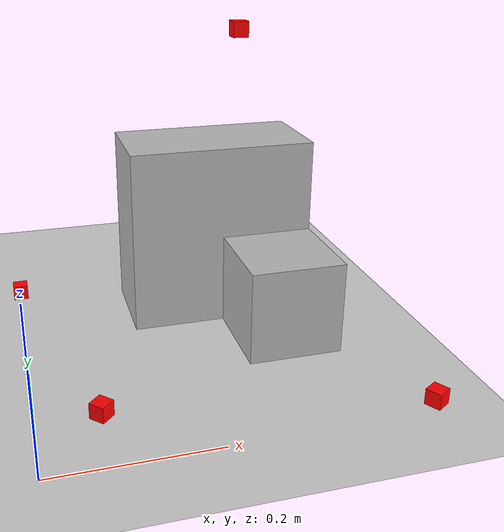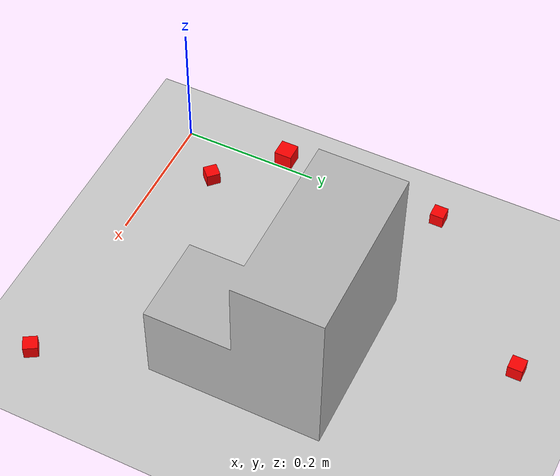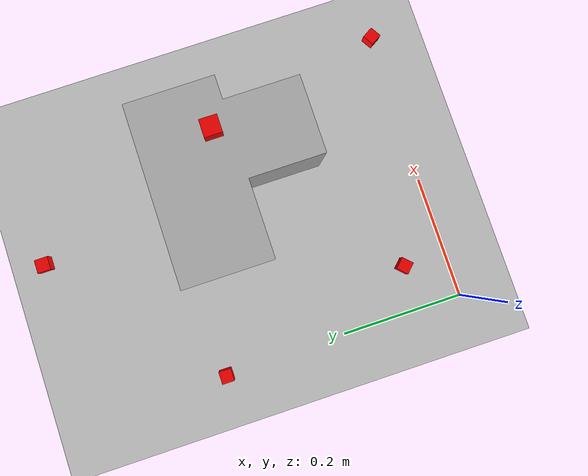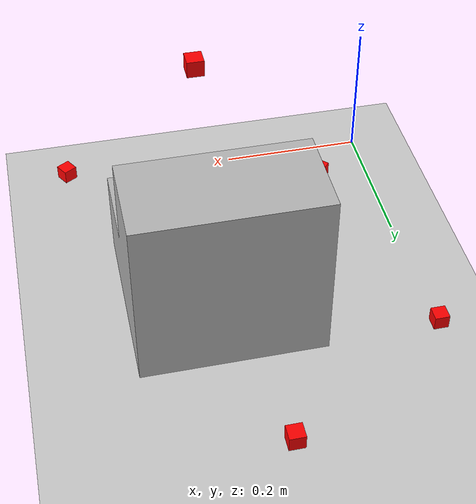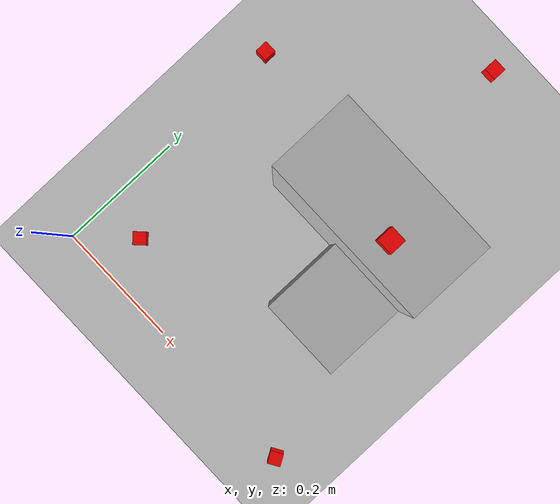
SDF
<?xml version="1.0"?>
<sdf version="1.9">
  <world name="stylet_world">

    <physics name="default_physics" default="true" type="ode">
      <max_step_size>0.001</max_step_size>
      <real_time_factor>1.0</real_time_factor>
    </physics>

    <plugin filename="gz-sim-physics-system" name="gz::sim::systems::Physics"></plugin>
    <plugin filename="gz-sim-scene-broadcaster-system" name="gz::sim::systems::SceneBroadcaster"></plugin>
    <plugin filename="gz-sim-user-commands-system" name="gz::sim::systems::UserCommands"></plugin>
    <plugin filename="gz-sim-sensors-system" name="gz::sim::systems::Sensors">
      <render_engine>ogre2</render_engine>
    </plugin>
    <plugin filename="gz-sim-forcetorque-system" name="gz::sim::systems::ForceTorque"></plugin>

    <light type="directional" name="sun">
      <cast_shadows>true</cast_shadows>
      <pose>0 0 10 0 0 0</pose>
      <diffuse>0.8 0.8 0.8 1</diffuse>
      <specular>0.2 0.2 0.2 1</specular>
      <direction>-0.5 0.1 -0.9</direction>
    </light>

    <model name="ground_plane">
      <static>true</static>
      <link name="link">
        <collision name="collision">
          <geometry><plane><normal>0 0 1</normal></plane></geometry>
        </collision>
        <visual name="visual">
          <geometry><plane><normal>0 0 1</normal><size>10 10</size></plane></geometry>
        </visual>
      </link>
    </model>

    <include>
      <uri>model://target</uri>
      <name>target</name>
      <pose>0.15 0.15 0 0 0 0</pose>
    </include>

    <model name="lidar_rig">
      <static>true</static>

      <link name="lidar_front">
        <pose>0 0.40 0.02 0 0 0</pose>
        <collision name="lidar_front_collision">
          <geometry><box><size>0.02 0.02 0.02</size></box></geometry>
        </collision>
        <visual name="lidar_front_visual">
          <geometry><box><size>0.02 0.02 0.02</size></box></geometry>
          <material><ambient>1 0 0 1</ambient><diffuse>1 0 0 1</diffuse><specular>1 0 0 1</specular></material>
        </visual>
        <sensor name="lidar_front_sensor" type="gpu_lidar">
          <topic>/lidar_1</topic>
          <update_rate>10</update_rate>
          <alwaysOn>1</alwaysOn>
          <visualize>true</visualize>
          <lidar>
            <scan>
              <horizontal>
                <samples>640</samples>
                <resolution>1</resolution>
                <min_angle>-0.5</min_angle>
                <max_angle>0.5</max_angle>
              </horizontal>
              <vertical>
                <samples>16</samples>
                <resolution>1</resolution>
                <min_angle>-0.261799</min_angle>
                <max_angle>0.261799</max_angle>
              </vertical>
            </scan>
            <range>
              <min>0.05</min>
              <max>2.0</max>
              <resolution>0.01</resolution>
            </range>
          </lidar>
        </sensor>
      </link>

      <link name="lidar_left">
        <pose>0.075 0.075 0.02 0 0 0.785</pose>
        <collision name="lidar_left_collision">
          <geometry><box><size>0.02 0.02 0.02</size></box></geometry>
        </collision>
        <visual name="lidar_left_visual">
          <geometry><box><size>0.02 0.02 0.02</size></box></geometry>
          <material><ambient>1 0 0 1</ambient><diffuse>1 0 0 1</diffuse><specular>1 0 0 1</specular></material>
        </visual>
        <sensor name="lidar_left_sensor" type="gpu_lidar">
          <topic>/lidar_2</topic>
          <update_rate>10</update_rate>
          <alwaysOn>1</alwaysOn>
          <visualize>true</visualize>
          <lidar>
            <scan>
              <horizontal>
                <samples>640</samples>
                <resolution>1</resolution>
                <min_angle>-0.5</min_angle>
                <max_angle>0.5</max_angle>
              </horizontal>
              <vertical>
                <samples>16</samples>
                <resolution>1</resolution>
                <min_angle>-0.261799</min_angle>
                <max_angle>0.261799</max_angle>
              </vertical>
            </scan>
            <range>
              <min>0.05</min>
              <max>2.0</max>
              <resolution>0.01</resolution>
            </range>
          </lidar>
        </sensor>
      </link>

      <link name="lidar_top">
        <pose>0.30 0.30 0.40 0 1.571 0</pose>
        <collision name="lidar_top_collision">
          <geometry><box><size>0.02 0.02 0.02</size></box></geometry>
        </collision>
        <visual name="lidar_top_visual">
          <geometry><box><size>0.02 0.02 0.02</size></box></geometry>
          <material><ambient>1 0 0 1</ambient><diffuse>1 0 0 1</diffuse><specular>1 0 0 1</specular></material>
        </visual>
        <sensor name="lidar_top_sensor" type="gpu_lidar">
          <topic>/lidar_3</topic>
          <update_rate>10</update_rate>
          <alwaysOn>1</alwaysOn>
          <visualize>true</visualize>
          <lidar>
            <scan>
              <horizontal>
                <samples>640</samples>
                <resolution>1</resolution>
                <min_angle>-0.5</min_angle>
                <max_angle>0.5</max_angle>
              </horizontal>
              <vertical>
                <samples>16</samples>
                <resolution>1</resolution>
                <min_angle>-0.261799</min_angle>
                <max_angle>0.261799</max_angle>
              </vertical>
            </scan>
            <range>
              <min>0.05</min>
              <max>2.0</max>
              <resolution>0.01</resolution>
            </range>
          </lidar>
        </sensor>
      </link>

      <link name="lidar_back">
        <pose>0.45 0.0 0.02 0 0 2.111</pose>
        <collision name="lidar_back_collision">
          <geometry><box><size>0.02 0.02 0.02</size></box></geometry>
        </collision>
        <visual name="lidar_back_visual">
          <geometry><box><size>0.02 0.02 0.02</size></box></geometry>
          <material><ambient>1 0 0 1</ambient><diffuse>1 0 0 1</diffuse><specular>1 0 0 1</specular></material>
        </visual>
        <sensor name="lidar_back_sensor" type="gpu_lidar">
          <topic>/lidar_4</topic>
          <update_rate>10</update_rate>
          <alwaysOn>1</alwaysOn>
          <visualize>true</visualize>
          <lidar>
            <scan>
              <horizontal>
                <samples>640</samples>
                <resolution>1</resolution>
                <min_angle>-0.5</min_angle>
                <max_angle>0.5</max_angle>
              </horizontal>
              <vertical>
                <samples>16</samples>
                <resolution>1</resolution>
                <min_angle>-0.261799</min_angle>
                <max_angle>0.261799</max_angle>
              </vertical>
            </scan>
            <range>
              <min>0.05</min>
              <max>2.0</max>
              <resolution>0.01</resolution>
            </range>
          </lidar>
        </sensor>
      </link>

      <link name="lidar_side">
        <pose>0.25 0.60 0.10 0 0 -1.5708</pose>
        <collision name="lidar_side_collision">
          <geometry><box><size>0.02 0.02 0.02</size></box></geometry>
        </collision>
        <visual name="lidar_side_visual">
          <geometry><box><size>0.02 0.02 0.02</size></box></geometry>
          <material><ambient>1 0 0 1</ambient><diffuse>1 0 0 1</diffuse><specular>1 0 0 1</specular></material>
        </visual>
        <sensor name="lidar_side_sensor" type="gpu_lidar">
          <topic>/lidar_5</topic>
          <update_rate>10</update_rate>
          <alwaysOn>1</alwaysOn>
          <visualize>true</visualize>
          <lidar>
            <scan>
              <horizontal>
                <samples>640</samples>
                <resolution>1</resolution>
                <min_angle>-0.5</min_angle>
                <max_angle>0.5</max_angle>
              </horizontal>
              <vertical>
                <samples>16</samples>
                <resolution>1</resolution>
                <min_angle>-0.261799</min_angle>
                <max_angle>0.261799</max_angle>
              </vertical>
            </scan>
            <range>
              <min>0.05</min>
              <max>2.0</max>
              <resolution>0.01</resolution>
            </range>
          </lidar>
        </sensor>
      </link>

    </model>

  </world>
</sdf>

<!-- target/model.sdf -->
<sdf version="1.9">
  <model name="target">
    <static>true</static>

    <link name="target_link">

      <visual name="target_visual">
        <geometry>
          <mesh>
            <scale>0.005 0.005 0.005</scale>
            <uri>meshes/target.stl</uri>
          </mesh>
        </geometry>
      </visual>

      <collision name="target_collision">
        <geometry>
          <mesh>
            <scale>0.005 0.005 0.005</scale>
            <uri>meshes/target_collision.stl</uri>
          </mesh>
        </geometry>
        <surface>
          <contact>
            <collide_bitmask>0xF0</collide_bitmask>
          </contact>
        </surface>
      </collision>

      <inertial>
        <mass>0.0828125</mass>
        <inertia>
          <ixx>0.0000345</ixx> <iyy>0.0000345</iyy> <izz>0.0000345</izz>
          <ixy>0.0</ixy> <ixz>0.0</ixz> <iyz>0.0</iyz>
        </inertia>
      </inertial>

    </link>
  </model>
</sdf>
